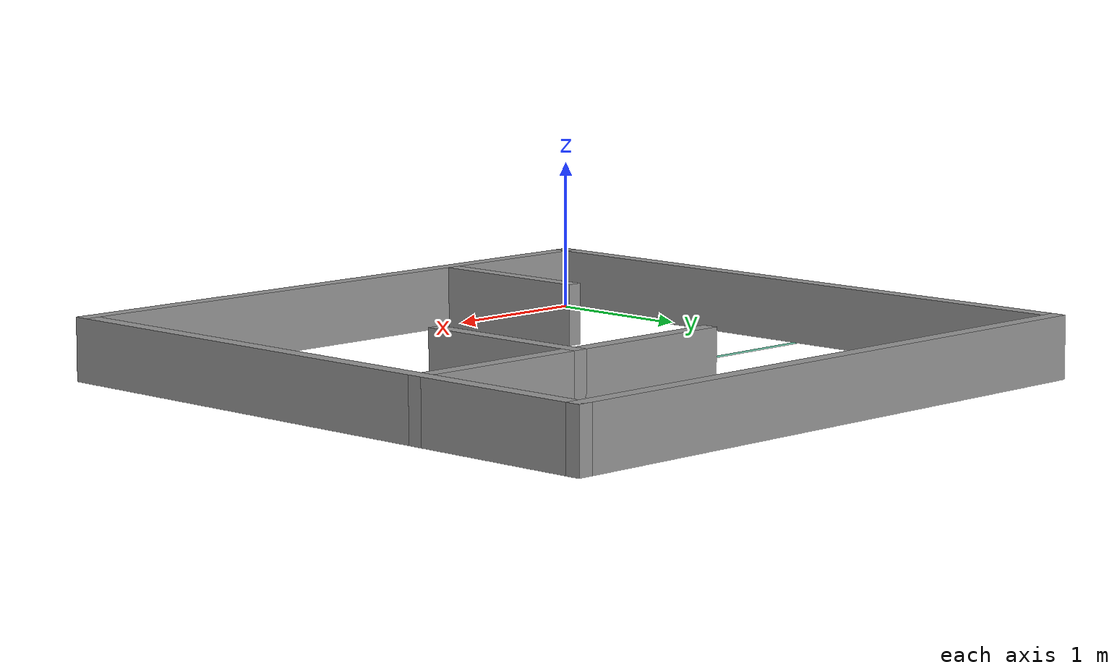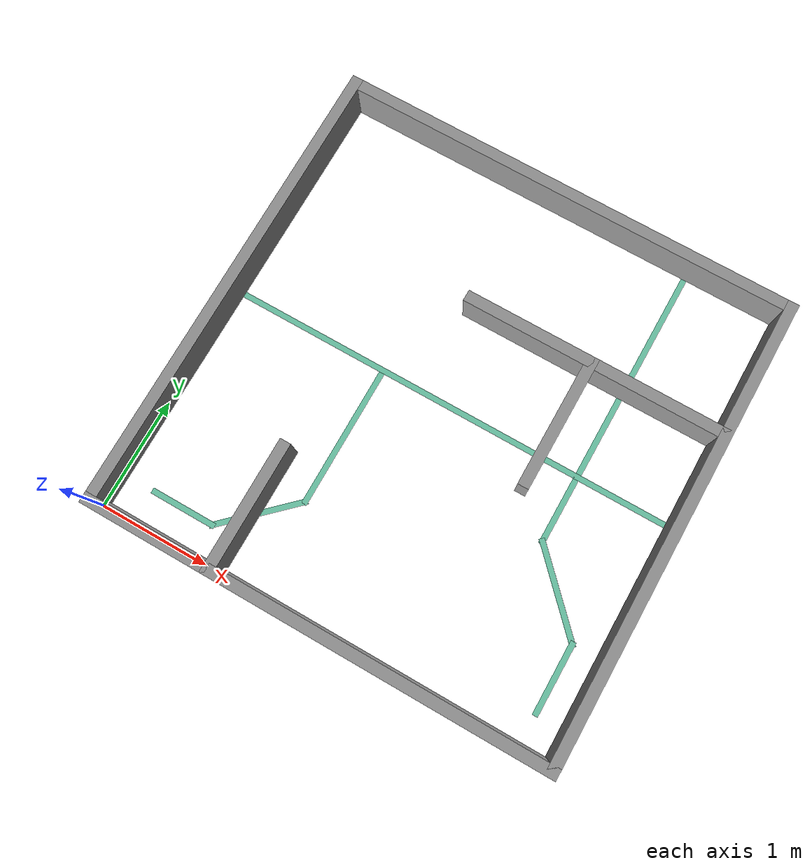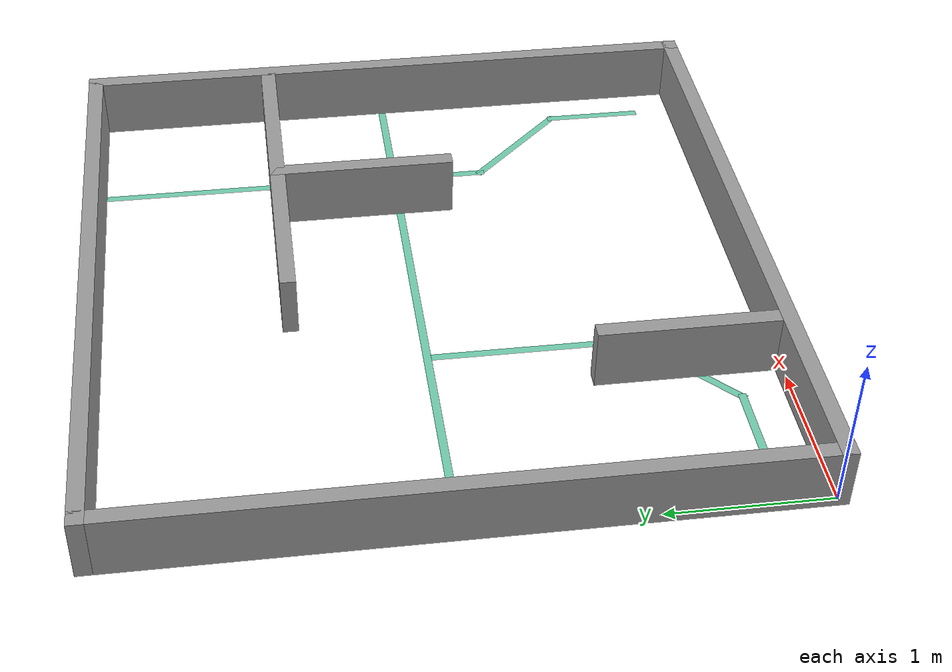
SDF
<?xml version='1.0'?>
<sdf version='1.7'>
  <model name='CM'>
    <pose>2.0835 2.0835 0 0 -0 0</pose>
    <link name='Wall_0'>
      <collision name='Wall_0_Collision'>
        <geometry>
          <box>
            <size>4.267 0.1 0.4</size>
          </box>
        </geometry>
        <pose>0 0 0.2 0 -0 0</pose>
      </collision>
      <visual name='Wall_0_Visual'>
        <pose>0 0 0.2 0 -0 0</pose>
        <geometry>
          <box>
            <size>4.267 0.1 0.4</size>
          </box>
        </geometry>
        <material>
          <script>
            <uri>file://media/materials/scripts/gazebo.material</uri>
            <name>Gazebo/Grey</name>
          </script>
          <ambient>1 1 1 1</ambient>
        </material>
        <meta>
          <layer>0</layer>
        </meta>
      </visual>
      <pose>2.0835 0 0 0 -0 1.5708</pose>
    </link>
    <link name='Wall_1'>
      <collision name='Wall_1_Collision'>
        <geometry>
          <box>
            <size>4.267 0.1 0.4</size>
          </box>
        </geometry>
        <pose>0 0 0.2 0 -0 0</pose>
      </collision>
      <visual name='Wall_1_Visual'>
        <pose>0 0 0.2 0 -0 0</pose>
        <geometry>
          <box>
            <size>4.267 0.1 0.4</size>
          </box>
        </geometry>
        <material>
          <script>
            <uri>file://media/materials/scripts/gazebo.material</uri>
            <name>Gazebo/Grey</name>
          </script>
          <ambient>1 1 1 1</ambient>
        </material>
        <meta>
          <layer>0</layer>
        </meta>
      </visual>
      <pose>0 2.0835 0 0 -0 3.14159</pose>
    </link>
    <link name='Wall_2'>
      <collision name='Wall_2_Collision'>
        <geometry>
          <box>
            <size>4.267 0.1 0.4</size>
          </box>
        </geometry>
        <pose>0 0 0.2 0 -0 0</pose>
      </collision>
      <visual name='Wall_2_Visual'>
        <pose>0 0 0.2 0 -0 0</pose>
        <geometry>
          <box>
            <size>4.267 0.1 0.4</size>
          </box>
        </geometry>
        <material>
          <script>
            <uri>file://media/materials/scripts/gazebo.material</uri>
            <name>Gazebo/Grey</name>
          </script>
          <ambient>1 1 1 1</ambient>
        </material>
        <meta>
          <layer>0</layer>
        </meta>
      </visual>
      <pose>-2.0835 0 0 0 -0 -1.5708</pose>
    </link>
    <link name='Wall_3'>
      <collision name='Wall_3_Collision'>
        <geometry>
          <box>
            <size>4.267 0.1 0.4</size>
          </box>
        </geometry>
        <pose>0 0 0.2 0 -0 0</pose>
      </collision>
      <visual name='Wall_3_Visual'>
        <pose>0 0 0.2 0 -0 0</pose>
        <geometry>
          <box>
            <size>4.267 0.1 0.4</size>
          </box>
        </geometry>
        <material>
          <script>
            <uri>file://media/materials/scripts/gazebo.material</uri>
            <name>Gazebo/Grey</name>
          </script>
          <ambient>1 1 1 1</ambient>
        </material>
        <meta>
          <layer>0</layer>
        </meta>
      </visual>
      <pose>0 -2.0835 0 0 -0 0</pose>
    </link>
    <link name='Wall_32'>
      <collision name='Wall_32_Collision'>
        <geometry>
          <box>
            <size>0.61 0.05 0</size>
          </box>
        </geometry>
        <pose>0 0 0 0 -0 0</pose>
      </collision>
      <visual name='Wall_32_Visual'>
        <pose>0 0 0 0 -0 0</pose>
        <geometry>
          <box>
            <size>0.61 0.05 0</size>
          </box>
        </geometry>
        <material>
          <script>
            <uri>file://media/materials/scripts/gazebo.material</uri>
            <name>Gazebo/Grey</name>
          </script>
          <ambient>0.435294 0.796078 0.67451 1</ambient>
        </material>
        <meta>
          <layer>0</layer>
        </meta>
      </visual>
      <pose>-1.4985 -1.7785 0 0 -0 0</pose>
    </link>
    <link name='Wall_34'>
      <collision name='Wall_34_Collision'>
        <geometry>
          <box>
            <size>0.835175 0.05 0</size>
          </box>
        </geometry>
        <pose>0 0 0 0 -0 0</pose>
      </collision>
      <visual name='Wall_34_Visual'>
        <pose>0 0 0 0 -0 0</pose>
        <geometry>
          <box>
            <size>0.835175 0.05 0</size>
          </box>
        </geometry>
        <material>
          <script>
            <uri>file://media/materials/scripts/gazebo.material</uri>
            <name>Gazebo/Grey</name>
          </script>
          <ambient>0.435294 0.796078 0.67451 1</ambient>
        </material>
        <meta>
          <layer>0</layer>
        </meta>
      </visual>
      <pose>-0.9335 -1.5085 0 0 -0 0.758378</pose>
    </link>
    <link name='Wall_36'>
      <collision name='Wall_36_Collision'>
        <geometry>
          <box>
            <size>1.33876 0.05 0</size>
          </box>
        </geometry>
        <pose>0 0 0 0 -0 0</pose>
      </collision>
      <visual name='Wall_36_Visual'>
        <pose>0 0 0 0 -0 0</pose>
        <geometry>
          <box>
            <size>1.33876 0.05 0</size>
          </box>
        </geometry>
        <material>
          <script>
            <uri>file://media/materials/scripts/gazebo.material</uri>
            <name>Gazebo/Grey</name>
          </script>
          <ambient>0.435294 0.796078 0.67451 1</ambient>
        </material>
        <meta>
          <layer>0</layer>
        </meta>
      </visual>
      <pose>-0.6485 -0.594 0 0 -0 1.5708</pose>
    </link>
    <link name='Wall_38'>
      <collision name='Wall_38_Collision'>
        <geometry>
          <box>
            <size>4.2 0.05 0</size>
          </box>
        </geometry>
        <pose>0 0 0 0 -0 0</pose>
      </collision>
      <visual name='Wall_38_Visual'>
        <pose>0 0 0 0 -0 0</pose>
        <geometry>
          <box>
            <size>4.2 0.05 0</size>
          </box>
        </geometry>
        <material>
          <script>
            <uri>file://media/materials/scripts/gazebo.material</uri>
            <name>Gazebo/Grey</name>
          </script>
          <ambient>0.435294 0.796078 0.67451 1</ambient>
        </material>
        <meta>
          <layer>0</layer>
        </meta>
      </visual>
      <pose>-0.0085 0.0505 0 0 -0 0</pose>
    </link>
    <link name='Wall_40'>
      <collision name='Wall_40_Collision'>
        <geometry>
          <box>
            <size>2.676 0.05 0</size>
          </box>
        </geometry>
        <pose>0 0 0 0 -0 0</pose>
      </collision>
      <visual name='Wall_40_Visual'>
        <pose>0 0 0 0 -0 0</pose>
        <geometry>
          <box>
            <size>2.676 0.05 0</size>
          </box>
        </geometry>
        <material>
          <script>
            <uri>file://media/materials/scripts/gazebo.material</uri>
            <name>Gazebo/Grey</name>
          </script>
          <ambient>0.435294 0.796078 0.67451 1</ambient>
        </material>
        <meta>
          <layer>0</layer>
        </meta>
      </visual>
      <pose>1.2175 0.7535 0 0 -0 1.5708</pose>
    </link>
    <link name='Wall_42'>
      <collision name='Wall_42_Collision'>
        <geometry>
          <box>
            <size>0.904927 0.05 0</size>
          </box>
        </geometry>
        <pose>0 0 0 0 -0 0</pose>
      </collision>
      <visual name='Wall_42_Visual'>
        <pose>0 0 0 0 -0 0</pose>
        <geometry>
          <box>
            <size>0.904927 0.05 0</size>
          </box>
        </geometry>
        <material>
          <script>
            <uri>file://media/materials/scripts/gazebo.material</uri>
            <name>Gazebo/Grey</name>
          </script>
          <ambient>0.435294 0.796078 0.67451 1</ambient>
        </material>
        <meta>
          <layer>0</layer>
        </meta>
      </visual>
      <pose>1.517 -0.8645 0 0 -0 -0.794496</pose>
    </link>
    <link name='Wall_44'>
      <collision name='Wall_44_Collision'>
        <geometry>
          <box>
            <size>0.659 0.05 0</size>
          </box>
        </geometry>
        <pose>0 0 0 0 -0 0</pose>
      </collision>
      <visual name='Wall_44_Visual'>
        <pose>0 0 0 0 -0 0</pose>
        <geometry>
          <box>
            <size>0.659 0.05 0</size>
          </box>
        </geometry>
        <material>
          <script>
            <uri>file://media/materials/scripts/gazebo.material</uri>
            <name>Gazebo/Grey</name>
          </script>
          <ambient>0.435294 0.796078 0.67451 1</ambient>
        </material>
        <meta>
          <layer>0</layer>
        </meta>
      </visual>
      <pose>1.8165 -1.474 0 0 -0 -1.5708</pose>
    </link>
    <link name='Wall_5'>
      <collision name='Wall_5_Collision'>
        <geometry>
          <box>
            <size>1.219 0.1 0.4</size>
          </box>
        </geometry>
        <pose>0 0 0.2 0 -0 0</pose>
      </collision>
      <visual name='Wall_5_Visual'>
        <pose>0 0 0.2 0 -0 0</pose>
        <geometry>
          <box>
            <size>1.219 0.1 0.4</size>
          </box>
        </geometry>
        <material>
          <script>
            <uri>file://media/materials/scripts/gazebo.material</uri>
            <name>Gazebo/Grey</name>
          </script>
          <ambient>1 1 1 1</ambient>
        </material>
        <meta>
          <layer>0</layer>
        </meta>
      </visual>
      <pose>-0.9645 -1.524 0 0 -0 1.5708</pose>
    </link>
    <link name='Wall_7'>
      <collision name='Wall_7_Collision'>
        <geometry>
          <box>
            <size>2.438 0.1 0.4</size>
          </box>
        </geometry>
        <pose>0 0 0.2 0 -0 0</pose>
      </collision>
      <visual name='Wall_7_Visual'>
        <pose>0 0 0.2 0 -0 0</pose>
        <geometry>
          <box>
            <size>2.438 0.1 0.4</size>
          </box>
        </geometry>
        <material>
          <script>
            <uri>file://media/materials/scripts/gazebo.material</uri>
            <name>Gazebo/Grey</name>
          </script>
          <ambient>1 1 1 1</ambient>
        </material>
        <meta>
          <layer>0</layer>
        </meta>
      </visual>
      <pose>0.9145 0.8645 0 0 -0 0</pose>
    </link>
    <link name='Wall_9'>
      <collision name='Wall_9_Collision'>
        <geometry>
          <box>
            <size>1.219 0.1 0.4</size>
          </box>
        </geometry>
        <pose>0 0 0.2 0 -0 0</pose>
      </collision>
      <visual name='Wall_9_Visual'>
        <pose>0 0 0.2 0 -0 0</pose>
        <geometry>
          <box>
            <size>1.219 0.1 0.4</size>
          </box>
        </geometry>
        <material>
          <script>
            <uri>file://media/materials/scripts/gazebo.material</uri>
            <name>Gazebo/Grey</name>
          </script>
          <ambient>1 1 1 1</ambient>
        </material>
        <meta>
          <layer>0</layer>
        </meta>
      </visual>
      <pose>0.8645 0.305 0 0 -0 1.5708</pose>
    </link>
    <static>1</static>
  </model>
</sdf>
